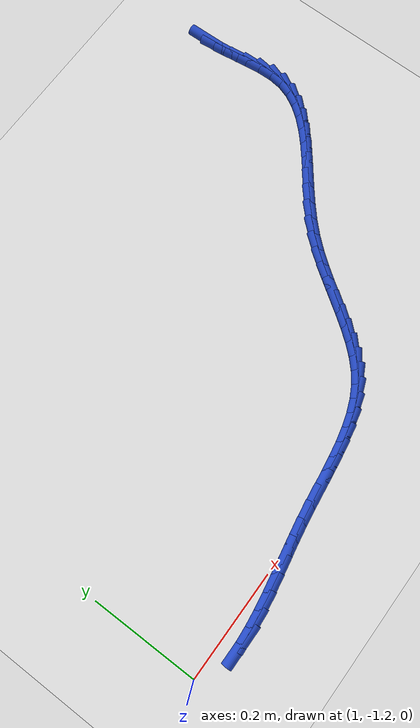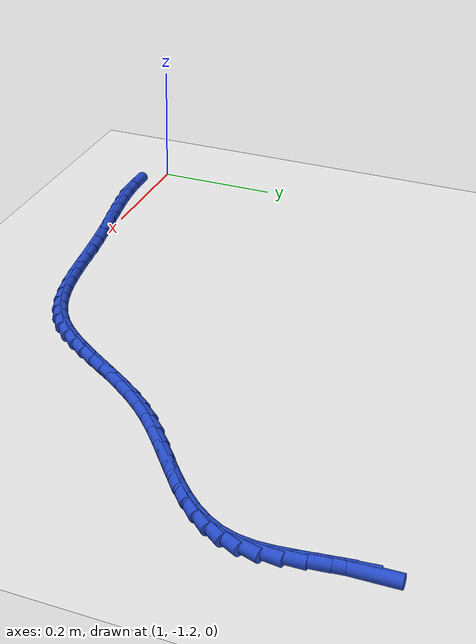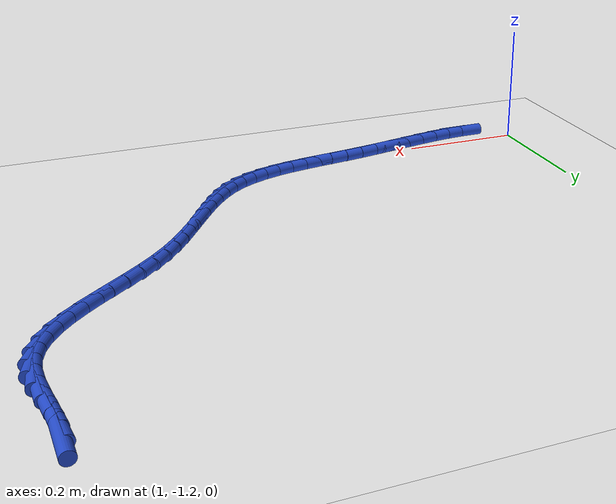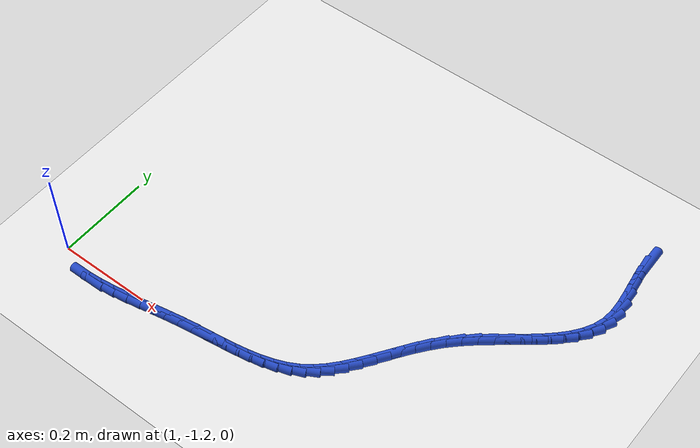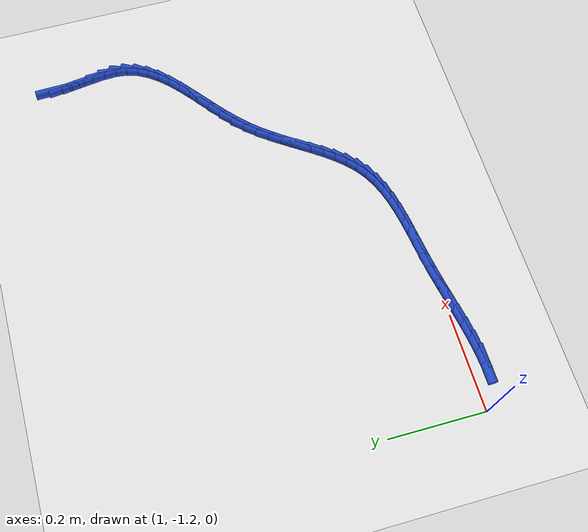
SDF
<sdf version="1.6">
 <world name="default">
  <model name="ground_plane">
   <static>1</static>
   <link name="link">
    <collision name="collision">
     <geometry><plane><normal>0 0 1</normal><size>100 100</size></plane></geometry>
     <surface><friction><ode><mu>100</mu><mu2>50</mu2></ode></friction></surface>
    </collision>
    <visual name="visual">
     <cast_shadows>0</cast_shadows>
     <geometry><plane><normal>0 0 1</normal><size>100 100</size></plane></geometry>
     <material>
      <script><uri>file://media/materials/scripts/gazebo.material</uri><name>Gazebo/WhiteGlow</name></script>
     </material>
    </visual>
   </link>
  </model>
  <model name="line">
   <link name="link_153">
    <pose>1.9194700413632226 -0.5363384646565128 0.01 0 1.57 -1.5447964488445642</pose>
    <collision name="collision">
     <geometry><cylinder><radius>0.01</radius><length>0.08</length></cylinder></geometry>
    </collision>
    <visual name="visual">
     <material>
      <script><name>Gazebo/Blue</name><uri>file://media/materials/scripts/gazebo.material</uri></script>
     </material>
     <geometry><cylinder><radius>0.01</radius><length>0.08</length></cylinder></geometry>
    </visual>
   </link>
   <link name="link_154">
    <pose>1.9201986578476613 -0.5643559922153355 0.01 0 1.57 -1.4595658948877877</pose>
    <collision name="collision">
     <geometry><cylinder><radius>0.01</radius><length>0.08</length></cylinder></geometry>
    </collision>
    <visual name="visual">
     <material>
      <script><name>Gazebo/Blue</name><uri>file://media/materials/scripts/gazebo.material</uri></script>
     </material>
     <geometry><cylinder><radius>0.01</radius><length>0.08</length></cylinder></geometry>
    </visual>
   </link>
   <link name="link_155">
    <pose>1.923407471592538 -0.5930852652274804 0.01 0 1.57 -1.4307976151864397</pose>
    <collision name="collision">
     <geometry><cylinder><radius>0.01</radius><length>0.08</length></cylinder></geometry>
    </collision>
    <visual name="visual">
     <material>
      <script><name>Gazebo/Blue</name><uri>file://media/materials/scripts/gazebo.material</uri></script>
     </material>
     <geometry><cylinder><radius>0.01</radius><length>0.08</length></cylinder></geometry>
    </visual>
   </link>
   <link name="link_156">
    <pose>1.9274728649290573 -0.6219340913326493 0.01 0 1.57 -1.4550788810328805</pose>
    <collision name="collision">
     <geometry><cylinder><radius>0.01</radius><length>0.08</length></cylinder></geometry>
    </collision>
    <visual name="visual">
     <material>
      <script><name>Gazebo/Blue</name><uri>file://media/materials/scripts/gazebo.material</uri></script>
     </material>
     <geometry><cylinder><radius>0.01</radius><length>0.08</length></cylinder></geometry>
    </visual>
   </link>
   <link name="link_157">
    <pose>1.9307712201884204 -0.6503102781705408 0.01 0 1.57 -1.5375733132011193</pose>
    <collision name="collision">
     <geometry><cylinder><radius>0.01</radius><length>0.08</length></cylinder></geometry>
    </collision>
    <visual name="visual">
     <material>
      <script><name>Gazebo/Blue</name><uri>file://media/materials/scripts/gazebo.material</uri></script>
     </material>
     <geometry><cylinder><radius>0.01</radius><length>0.08</length></cylinder></geometry>
    </visual>
   </link>
   <link name="link_158">
    <pose>1.9316789197018311 -0.6776216333808565 0.01 0 1.57 1.4510065897784028</pose>
    <collision name="collision">
     <geometry><cylinder><radius>0.01</radius><length>0.08</length></cylinder></geometry>
    </collision>
    <visual name="visual">
     <material>
      <script><name>Gazebo/Blue</name><uri>file://media/materials/scripts/gazebo.material</uri></script>
     </material>
     <geometry><cylinder><radius>0.01</radius><length>0.08</length></cylinder></geometry>
    </visual>
   </link>
   <link name="link_159">
    <pose>1.9285901551056785 -0.7032830661587055 0.01 0 1.57 1.2533125429697873</pose>
    <collision name="collision">
     <geometry><cylinder><radius>0.01</radius><length>0.08</length></cylinder></geometry>
    </collision>
    <visual name="visual">
     <material>
      <script><name>Gazebo/Blue</name><uri>file://media/materials/scripts/gazebo.material</uri></script>
     </material>
     <geometry><cylinder><radius>0.01</radius><length>0.08</length></cylinder></geometry>
    </visual>
   </link>
   <link name="link_160">
    <pose>1.9207771974747265 -0.7270596245574907 0.01 0 1.57 1.0743682259446388</pose>
    <collision name="collision">
     <geometry><cylinder><radius>0.01</radius><length>0.08</length></cylinder></geometry>
    </collision>
    <visual name="visual">
     <material>
      <script><name>Gazebo/Blue</name><uri>file://media/materials/scripts/gazebo.material</uri></script>
     </material>
     <geometry><cylinder><radius>0.01</radius><length>0.08</length></cylinder></geometry>
    </visual>
   </link>
   <link name="link_161">
    <pose>1.9087738359337778 -0.7492193936799437 0.01 0 1.57 0.9296074674632714</pose>
    <collision name="collision">
     <geometry><cylinder><radius>0.01</radius><length>0.08</length></cylinder></geometry>
    </collision>
    <visual name="visual">
     <material>
      <script><name>Gazebo/Blue</name><uri>file://media/materials/scripts/gazebo.material</uri></script>
     </material>
     <geometry><cylinder><radius>0.01</radius><length>0.08</length></cylinder></geometry>
    </visual>
   </link>
   <link name="link_162">
    <pose>1.8932115267627139 -0.7700694039276815 0.01 0 1.57 0.8207924672967317</pose>
    <collision name="collision">
     <geometry><cylinder><radius>0.01</radius><length>0.08</length></cylinder></geometry>
    </collision>
    <visual name="visual">
     <material>
      <script><name>Gazebo/Blue</name><uri>file://media/materials/scripts/gazebo.material</uri></script>
     </material>
     <geometry><cylinder><radius>0.01</radius><length>0.08</length></cylinder></geometry>
    </visual>
   </link>
   <link name="link_163">
    <pose>1.8747217262414173 -0.7899166857023212 0.01 0 1.57 0.7445006626881043</pose>
    <collision name="collision">
     <geometry><cylinder><radius>0.01</radius><length>0.08</length></cylinder></geometry>
    </collision>
    <visual name="visual">
     <material>
      <script><name>Gazebo/Blue</name><uri>file://media/materials/scripts/gazebo.material</uri></script>
     </material>
     <geometry><cylinder><radius>0.01</radius><length>0.08</length></cylinder></geometry>
    </visual>
   </link>
   <link name="link_164">
    <pose>1.85393589064977 -0.8090682694054796 0.01 0 1.57 0.6961623451918163</pose>
    <collision name="collision">
     <geometry><cylinder><radius>0.01</radius><length>0.08</length></cylinder></geometry>
    </collision>
    <visual name="visual">
     <material>
      <script><name>Gazebo/Blue</name><uri>file://media/materials/scripts/gazebo.material</uri></script>
     </material>
     <geometry><cylinder><radius>0.01</radius><length>0.08</length></cylinder></geometry>
    </visual>
   </link>
   <link name="link_165">
    <pose>1.831485476267653 -0.8278311854387743 0.01 0 1.57 0.6719942745382576</pose>
    <collision name="collision">
     <geometry><cylinder><radius>0.01</radius><length>0.08</length></cylinder></geometry>
    </collision>
    <visual name="visual">
     <material>
      <script><name>Gazebo/Blue</name><uri>file://media/materials/scripts/gazebo.material</uri></script>
     </material>
     <geometry><cylinder><radius>0.01</radius><length>0.08</length></cylinder></geometry>
    </visual>
   </link>
   <link name="link_166">
    <pose>1.8080019393749511 -0.8465124642038214 0.01 0 1.57 0.6695759584713855</pose>
    <collision name="collision">
     <geometry><cylinder><radius>0.01</radius><length>0.08</length></cylinder></geometry>
    </collision>
    <visual name="visual">
     <material>
      <script><name>Gazebo/Blue</name><uri>file://media/materials/scripts/gazebo.material</uri></script>
     </material>
     <geometry><cylinder><radius>0.01</radius><length>0.08</length></cylinder></geometry>
    </visual>
   </link>
   <link name="link_167">
    <pose>1.7841167362515447 -0.8654191361022381 0.01 0 1.57 0.6878697068694349</pose>
    <collision name="collision">
     <geometry><cylinder><radius>0.01</radius><length>0.08</length></cylinder></geometry>
    </collision>
    <visual name="visual">
     <material>
      <script><name>Gazebo/Blue</name><uri>file://media/materials/scripts/gazebo.material</uri></script>
     </material>
     <geometry><cylinder><radius>0.01</radius><length>0.08</length></cylinder></geometry>
    </visual>
   </link>
   <link name="link_168">
    <pose>1.760461323177316 -0.8848582315356418 0.01 0 1.57 0.727060469256787</pose>
    <collision name="collision">
     <geometry><cylinder><radius>0.01</radius><length>0.08</length></cylinder></geometry>
    </collision>
    <visual name="visual">
     <material>
      <script><name>Gazebo/Blue</name><uri>file://media/materials/scripts/gazebo.material</uri></script>
     </material>
     <geometry><cylinder><radius>0.01</radius><length>0.08</length></cylinder></geometry>
    </visual>
   </link>
   <link name="link_169">
    <pose>1.7376671564321478 -0.9051367809056491 0.01 0 1.57 0.7882006130274082</pose>
    <collision name="collision">
     <geometry><cylinder><radius>0.01</radius><length>0.08</length></cylinder></geometry>
    </collision>
    <visual name="visual">
     <material>
      <script><name>Gazebo/Blue</name><uri>file://media/materials/scripts/gazebo.material</uri></script>
     </material>
     <geometry><cylinder><radius>0.01</radius><length>0.08</length></cylinder></geometry>
    </visual>
   </link>
   <link name="link_170">
    <pose>1.7163634664151406 -0.9265602118404277 0.01 0 1.57 0.860014418319405</pose>
    <collision name="collision">
     <geometry><cylinder><radius>0.01</radius><length>0.08</length></cylinder></geometry>
    </collision>
    <visual name="visual">
     <material>
      <script><name>Gazebo/Blue</name><uri>file://media/materials/scripts/gazebo.material</uri></script>
     </material>
     <geometry><cylinder><radius>0.01</radius><length>0.08</length></cylinder></geometry>
    </visual>
   </link>
   <link name="link_171">
    <pose>1.6968660235825583 -0.9492082411941621 0.01 0 1.57 0.9168179933258979</pose>
    <collision name="collision">
     <geometry><cylinder><radius>0.01</radius><length>0.08</length></cylinder></geometry>
    </collision>
    <visual name="visual">
     <material>
      <script><name>Gazebo/Blue</name><uri>file://media/materials/scripts/gazebo.material</uri></script>
     </material>
     <geometry><cylinder><radius>0.01</radius><length>0.08</length></cylinder></geometry>
    </visual>
   </link>
   <link name="link_172">
    <pose>1.6788565039962864 -0.9727039981778541 0.01 0 1.57 0.955081410020804</pose>
    <collision name="collision">
     <geometry><cylinder><radius>0.01</radius><length>0.08</length></cylinder></geometry>
    </collision>
    <visual name="visual">
     <material>
      <script><name>Gazebo/Blue</name><uri>file://media/materials/scripts/gazebo.material</uri></script>
     </material>
     <geometry><cylinder><radius>0.01</radius><length>0.08</length></cylinder></geometry>
    </visual>
   </link>
   <link name="link_173">
    <pose>1.6619400693189148 -0.9966155168470262 0.01 0 1.57 0.9744966004331134</pose>
    <collision name="collision">
     <geometry><cylinder><radius>0.01</radius><length>0.08</length></cylinder></geometry>
    </collision>
    <visual name="visual">
     <material>
      <script><name>Gazebo/Blue</name><uri>file://media/materials/scripts/gazebo.material</uri></script>
     </material>
     <geometry><cylinder><radius>0.01</radius><length>0.08</length></cylinder></geometry>
    </visual>
   </link>
   <link name="link_174">
    <pose>1.6457218812130325 -1.0205108312572038 0.01 0 1.57 0.9744740273191277</pose>
    <collision name="collision">
     <geometry><cylinder><radius>0.01</radius><length>0.08</length></cylinder></geometry>
    </collision>
    <visual name="visual">
     <material>
      <script><name>Gazebo/Blue</name><uri>file://media/materials/scripts/gazebo.material</uri></script>
     </material>
     <geometry><cylinder><radius>0.01</radius><length>0.08</length></cylinder></geometry>
    </visual>
   </link>
   <link name="link_175">
    <pose>1.6298071013412279 -1.0439579754639106 0.01 0 1.57 0.9538727533987844</pose>
    <collision name="collision">
     <geometry><cylinder><radius>0.01</radius><length>0.08</length></cylinder></geometry>
    </collision>
    <visual name="visual">
     <material>
      <script><name>Gazebo/Blue</name><uri>file://media/materials/scripts/gazebo.material</uri></script>
     </material>
     <geometry><cylinder><radius>0.01</radius><length>0.08</length></cylinder></geometry>
    </visual>
   </link>
   <link name="link_176">
    <pose>1.6138008913660904 -1.0665249835226718 0.01 0 1.57 0.9109008209239222</pose>
    <collision name="collision">
     <geometry><cylinder><radius>0.01</radius><length>0.08</length></cylinder></geometry>
    </collision>
    <visual name="visual">
     <material>
      <script><name>Gazebo/Blue</name><uri>file://media/materials/scripts/gazebo.material</uri></script>
     </material>
     <geometry><cylinder><radius>0.01</radius><length>0.08</length></cylinder></geometry>
    </visual>
   </link>
   <link name="link_177">
    <pose>1.597308412950209 -1.0877798894890112 0.01 0 1.57 0.843278031540968</pose>
    <collision name="collision">
     <geometry><cylinder><radius>0.01</radius><length>0.08</length></cylinder></geometry>
    </collision>
    <visual name="visual">
     <material>
      <script><name>Gazebo/Blue</name><uri>file://media/materials/scripts/gazebo.material</uri></script>
     </material>
     <geometry><cylinder><radius>0.01</radius><length>0.08</length></cylinder></geometry>
    </visual>
   </link>
   <link name="link_178">
    <pose>1.5799348277561722 -1.1072907274184531 0.01 0 1.57 0.7488783318100444</pose>
    <collision name="collision">
     <geometry><cylinder><radius>0.01</radius><length>0.08</length></cylinder></geometry>
    </collision>
    <visual name="visual">
     <material>
      <script><name>Gazebo/Blue</name><uri>file://media/materials/scripts/gazebo.material</uri></script>
     </material>
     <geometry><cylinder><radius>0.01</radius><length>0.08</length></cylinder></geometry>
    </visual>
   </link>
   <link name="link_179">
    <pose>1.5612852974465699 -1.1246255313665225 0.01 0 1.57 0.6273295491977473</pose>
    <collision name="collision">
     <geometry><cylinder><radius>0.01</radius><length>0.08</length></cylinder></geometry>
    </collision>
    <visual name="visual">
     <material>
      <script><name>Gazebo/Blue</name><uri>file://media/materials/scripts/gazebo.material</uri></script>
     </material>
     <geometry><cylinder><radius>0.01</radius><length>0.08</length></cylinder></geometry>
    </visual>
   </link>
   <link name="link_180">
    <pose>1.540967792156083 -1.1393563847106232 0.01 0 1.57 0.4959444265722678</pose>
    <collision name="collision">
     <geometry><cylinder><radius>0.01</radius><length>0.08</length></cylinder></geometry>
    </collision>
    <visual name="visual">
     <material>
      <script><name>Gazebo/Blue</name><uri>file://media/materials/scripts/gazebo.material</uri></script>
     </material>
     <geometry><cylinder><radius>0.01</radius><length>0.08</length></cylinder></geometry>
    </visual>
   </link>
   <link name="link_181">
    <pose>1.5187962078302857 -1.1513522795615525 0.01 0 1.57 0.38326916651104687</pose>
    <collision name="collision">
     <geometry><cylinder><radius>0.01</radius><length>0.08</length></cylinder></geometry>
    </collision>
    <visual name="visual">
     <material>
      <script><name>Gazebo/Blue</name><uri>file://media/materials/scripts/gazebo.material</uri></script>
     </material>
     <geometry><cylinder><radius>0.01</radius><length>0.08</length></cylinder></geometry>
    </visual>
   </link>
   <link name="link_182">
    <pose>1.4949272307924877 -1.1609764513521545 0.01 0 1.57 0.29323690857173007</pose>
    <collision name="collision">
     <geometry><cylinder><radius>0.01</radius><length>0.08</length></cylinder></geometry>
    </collision>
    <visual name="visual">
     <material>
      <script><name>Gazebo/Blue</name><uri>file://media/materials/scripts/gazebo.material</uri></script>
     </material>
     <geometry><cylinder><radius>0.01</radius><length>0.08</length></cylinder></geometry>
    </visual>
   </link>
   <link name="link_183">
    <pose>1.4695499773570295 -1.1686388938478987 0.01 0 1.57 0.22501977002849857</pose>
    <collision name="collision">
     <geometry><cylinder><radius>0.01</radius><length>0.08</length></cylinder></geometry>
    </collision>
    <visual name="visual">
     <material>
      <script><name>Gazebo/Blue</name><uri>file://media/materials/scripts/gazebo.material</uri></script>
     </material>
     <geometry><cylinder><radius>0.01</radius><length>0.08</length></cylinder></geometry>
    </visual>
   </link>
   <link name="link_184">
    <pose>1.4428535638382531 -1.1747496008142546 0.01 0 1.57 0.17670728791944737</pose>
    <collision name="collision">
     <geometry><cylinder><radius>0.01</radius><length>0.08</length></cylinder></geometry>
    </collision>
    <visual name="visual">
     <material>
      <script><name>Gazebo/Blue</name><uri>file://media/materials/scripts/gazebo.material</uri></script>
     </material>
     <geometry><cylinder><radius>0.01</radius><length>0.08</length></cylinder></geometry>
    </visual>
   </link>
   <link name="link_185">
    <pose>1.4150271065504996 -1.1797185660166913 0.01 0 1.57 0.14624088418960465</pose>
    <collision name="collision">
     <geometry><cylinder><radius>0.01</radius><length>0.08</length></cylinder></geometry>
    </collision>
    <visual name="visual">
     <material>
      <script><name>Gazebo/Blue</name><uri>file://media/materials/scripts/gazebo.material</uri></script>
     </material>
     <geometry><cylinder><radius>0.01</radius><length>0.08</length></cylinder></geometry>
    </visual>
   </link>
   <link name="link_186">
    <pose>1.3862597218081103 -1.1839557832206782 0.01 0 1.57 0.13187147387612566</pose>
    <collision name="collision">
     <geometry><cylinder><radius>0.01</radius><length>0.08</length></cylinder></geometry>
    </collision>
    <visual name="visual">
     <material>
      <script><name>Gazebo/Blue</name><uri>file://media/materials/scripts/gazebo.material</uri></script>
     </material>
     <geometry><cylinder><radius>0.01</radius><length>0.08</length></cylinder></geometry>
    </visual>
   </link>
   <link name="link_187">
    <pose>1.3567405259254262 -1.1878712461916836 0.01 0 1.57 0.13231582795707372</pose>
    <collision name="collision">
     <geometry><cylinder><radius>0.01</radius><length>0.08</length></cylinder></geometry>
    </collision>
    <visual name="visual">
     <material>
      <script><name>Gazebo/Blue</name><uri>file://media/materials/scripts/gazebo.material</uri></script>
     </material>
     <geometry><cylinder><radius>0.01</radius><length>0.08</length></cylinder></geometry>
    </visual>
   </link>
   <link name="link_188">
    <pose>1.3266586352167886 -1.1918749486951776 0.01 0 1.57 0.14675285023303672</pose>
    <collision name="collision">
     <geometry><cylinder><radius>0.01</radius><length>0.08</length></cylinder></geometry>
    </collision>
    <visual name="visual">
     <material>
      <script><name>Gazebo/Blue</name><uri>file://media/materials/scripts/gazebo.material</uri></script>
     </material>
     <geometry><cylinder><radius>0.01</radius><length>0.08</length></cylinder></geometry>
    </visual>
   </link>
   <link name="link_189">
    <pose>1.2962031618997727 -1.1963767401643104 0.01 0 1.57 0.16912039490499403</pose>
    <collision name="collision">
     <geometry><cylinder><radius>0.01</radius><length>0.08</length></cylinder></geometry>
    </collision>
    <visual name="visual">
     <material>
      <script><name>Gazebo/Blue</name><uri>file://media/materials/scripts/gazebo.material</uri></script>
     </material>
     <geometry><cylinder><radius>0.01</radius><length>0.08</length></cylinder></geometry>
    </visual>
   </link>
   <link name="link_190">
    <pose>1.2655581925467998 -1.2016094126582615 0.01 0 1.57 0.18298392989962042</pose>
    <collision name="collision">
     <geometry><cylinder><radius>0.01</radius><length>0.08</length></cylinder></geometry>
    </collision>
    <visual name="visual">
     <material>
      <script><name>Gazebo/Blue</name><uri>file://media/materials/scripts/gazebo.material</uri></script>
     </material>
     <geometry><cylinder><radius>0.01</radius><length>0.08</length></cylinder></geometry>
    </visual>
   </link>
   <link name="link_191">
    <pose>1.2348930075846007 -1.2072841262472618 0.01 0 1.57 0.1856659575009144</pose>
    <collision name="collision">
     <geometry><cylinder><radius>0.01</radius><length>0.08</length></cylinder></geometry>
    </collision>
    <visual name="visual">
     <material>
      <script><name>Gazebo/Blue</name><uri>file://media/materials/scripts/gazebo.material</uri></script>
     </material>
     <geometry><cylinder><radius>0.01</radius><length>0.08</length></cylinder></geometry>
    </visual>
   </link>
   <link name="link_192">
    <pose>1.2043741742865863 -1.2130164545071567 0.01 0 1.57 0.17708109817084686</pose>
    <collision name="collision">
     <geometry><cylinder><radius>0.01</radius><length>0.08</length></cylinder></geometry>
    </collision>
    <visual name="visual">
     <material>
      <script><name>Gazebo/Blue</name><uri>file://media/materials/scripts/gazebo.material</uri></script>
     </material>
     <geometry><cylinder><radius>0.01</radius><length>0.08</length></cylinder></geometry>
    </visual>
   </link>
   <link name="link_193">
    <pose>1.1741682599261656 -1.2184219710137898 0.01 0 1.57 0.15662261306517486</pose>
    <collision name="collision">
     <geometry><cylinder><radius>0.01</radius><length>0.08</length></cylinder></geometry>
    </collision>
    <visual name="visual">
     <material>
      <script><name>Gazebo/Blue</name><uri>file://media/materials/scripts/gazebo.material</uri></script>
     </material>
     <geometry><cylinder><radius>0.01</radius><length>0.08</length></cylinder></geometry>
    </visual>
   </link>
   <link name="link_194">
    <pose>1.14444183177675 -1.2231162493430068 0.01 0 1.57 0.1231212377387831</pose>
    <collision name="collision">
     <geometry><cylinder><radius>0.01</radius><length>0.08</length></cylinder></geometry>
    </collision>
    <visual name="visual">
     <material>
      <script><name>Gazebo/Blue</name><uri>file://media/materials/scripts/gazebo.material</uri></script>
     </material>
     <geometry><cylinder><radius>0.01</radius><length>0.08</length></cylinder></geometry>
    </visual>
   </link>
   <link name="link_195">
    <pose>1.1153614571117496 -1.2267148630706515 0.01 0 1.57 0.07480501038392759</pose>
    <collision name="collision">
     <geometry><cylinder><radius>0.01</radius><length>0.08</length></cylinder></geometry>
    </collision>
    <visual name="visual">
     <material>
      <script><name>Gazebo/Blue</name><uri>file://media/materials/scripts/gazebo.material</uri></script>
     </material>
     <geometry><cylinder><radius>0.01</radius><length>0.08</length></cylinder></geometry>
    </visual>
   </link>
   <link name="link_196">
    <pose>1.087093703204575 -1.2288333857725688 0.01 0 1.57 0.009307851420500128</pose>
    <collision name="collision">
     <geometry><cylinder><radius>0.01</radius><length>0.08</length></cylinder></geometry>
    </collision>
    <visual name="visual">
     <material>
      <script><name>Gazebo/Blue</name><uri>file://media/materials/scripts/gazebo.material</uri></script>
     </material>
     <geometry><cylinder><radius>0.01</radius><length>0.08</length></cylinder></geometry>
    </visual>
   </link>
  </model>
 </world>
</sdf>
